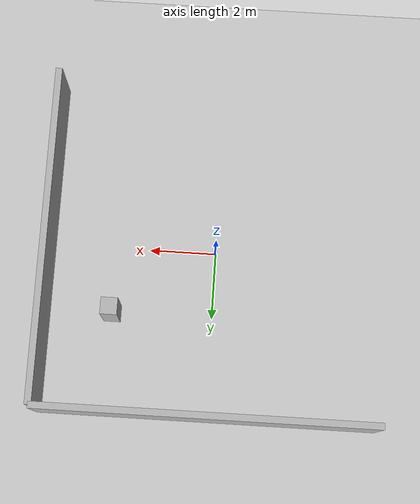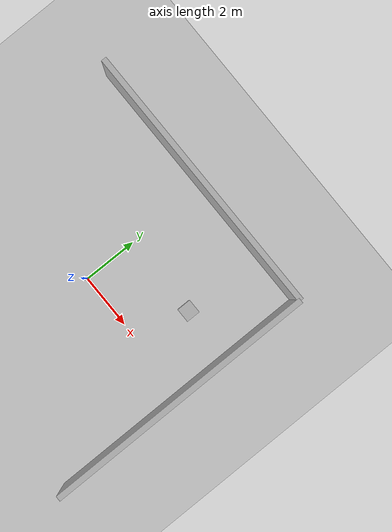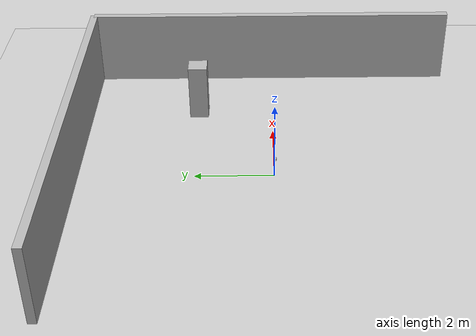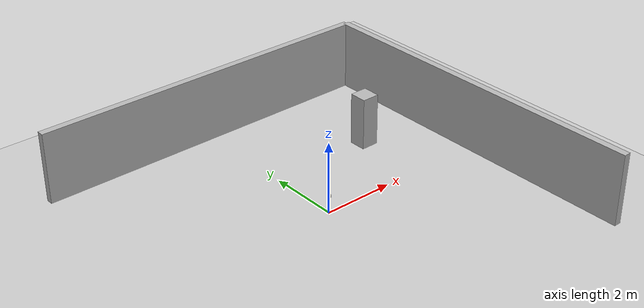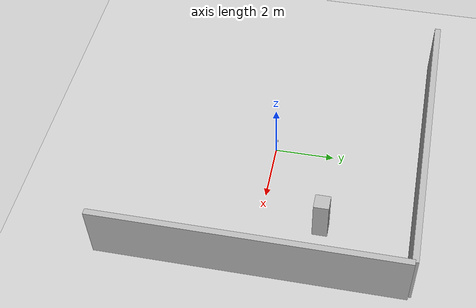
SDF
<?xml version="1.0"?>
<!-- 最小 spike 世界:墙+柱给雷达回波,静态模型挂 gpu_lidar(16线)+imu。
     仅用于 Phase 0 验证点云/IMU 链路,不代表最终机器人/世界。
     Harmonic 系统插件名为 gz-sim-*-system;若 build 机版本不同(用 gz sim 版本查),按报错调整。 -->
<sdf version="1.9">
  <world name="spike">
    <plugin filename="gz-sim-physics-system" name="gz::sim::systems::Physics"/>
    <plugin filename="gz-sim-sensors-system" name="gz::sim::systems::Sensors">
      <render_engine>ogre2</render_engine>
    </plugin>
    <plugin filename="gz-sim-imu-system" name="gz::sim::systems::Imu"/>
    <plugin filename="gz-sim-scene-broadcaster-system" name="gz::sim::systems::SceneBroadcaster"/>
    <plugin filename="gz-sim-user-commands-system" name="gz::sim::systems::UserCommands"/>

    <light type="directional" name="sun">
      <cast_shadows>true</cast_shadows>
      <pose>0 0 10 0 0 0</pose>
      <diffuse>0.8 0.8 0.8 1</diffuse>
      <direction>-0.5 0.1 -0.9</direction>
    </light>

    <model name="ground"><static>true</static><link name="l">
      <collision name="c"><geometry><plane><normal>0 0 1</normal><size>50 50</size></plane></geometry></collision>
      <visual name="v"><geometry><plane><normal>0 0 1</normal><size>50 50</size></plane></geometry></visual>
    </link></model>

    <model name="wall_a"><static>true</static><pose>5 0 1 0 0 0</pose><link name="l">
      <collision name="c"><geometry><box><size>0.2 10 2</size></box></geometry></collision>
      <visual name="v"><geometry><box><size>0.2 10 2</size></box></geometry></visual>
    </link></model>
    <model name="wall_b"><static>true</static><pose>0 5 1 0 0 0</pose><link name="l">
      <collision name="c"><geometry><box><size>10 0.2 2</size></box></geometry></collision>
      <visual name="v"><geometry><box><size>10 0.2 2</size></box></geometry></visual>
    </link></model>
    <model name="pillar"><static>true</static><pose>3 2 0.75 0 0 0</pose><link name="l">
      <collision name="c"><geometry><box><size>0.5 0.5 1.5</size></box></geometry></collision>
      <visual name="v"><geometry><box><size>0.5 0.5 1.5</size></box></geometry></visual>
    </link></model>

    <model name="sensor_rig"><static>true</static><pose>0 0 0.5 0 0 0</pose>
      <link name="velodyne">
        <inertial><mass>1.0</mass><inertia><ixx>0.1</ixx><iyy>0.1</iyy><izz>0.1</izz><ixy>0</ixy><ixz>0</ixz><iyz>0</iyz></inertia></inertial>
        <visual name="v"><geometry><cylinder><radius>0.05</radius><length>0.07</length></cylinder></geometry></visual>

        <sensor name="gpu_lidar" type="gpu_lidar">
          <topic>gz_lidar</topic>
          <gz_frame_id>velodyne</gz_frame_id>
          <update_rate>10</update_rate>
          <always_on>1</always_on>
          <visualize>true</visualize>
          <lidar>
            <scan>
              <horizontal><samples>1800</samples><resolution>1</resolution><min_angle>-3.14159</min_angle><max_angle>3.14159</max_angle></horizontal>
              <vertical><samples>16</samples><resolution>1</resolution><min_angle>-0.261799</min_angle><max_angle>0.261799</max_angle></vertical>
            </scan>
            <range><min>0.9</min><max>100.0</max><resolution>0.01</resolution></range>
          </lidar>
        </sensor>

        <sensor name="imu" type="imu">
          <topic>gz_imu</topic>
          <gz_frame_id>velodyne</gz_frame_id>
          <update_rate>200</update_rate>
          <always_on>1</always_on>
        </sensor>
      </link>
    </model>
  </world>
</sdf>
